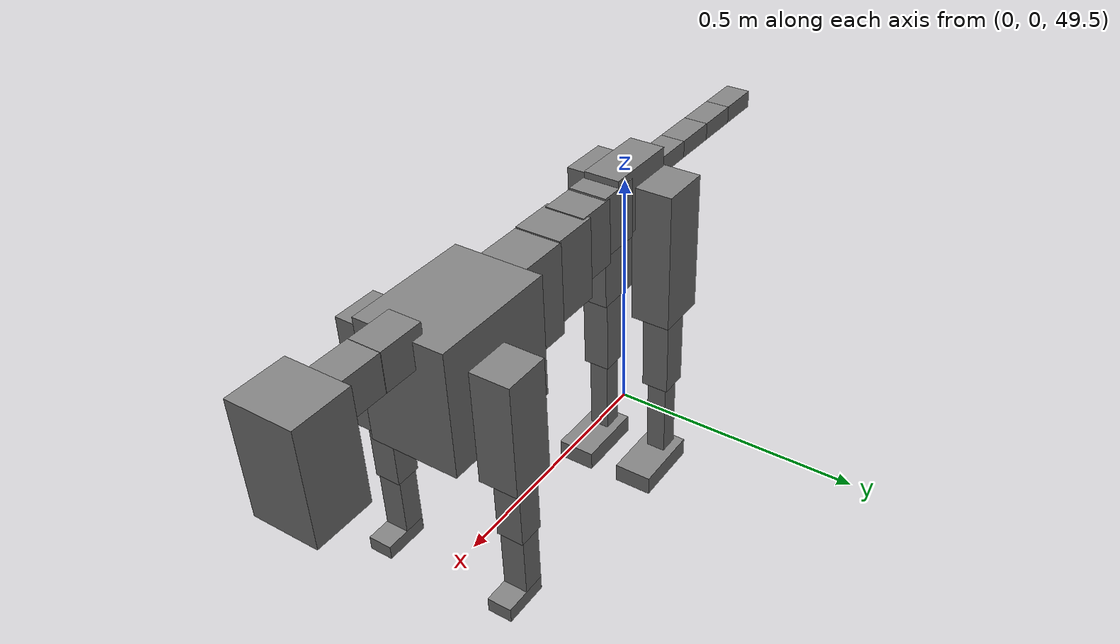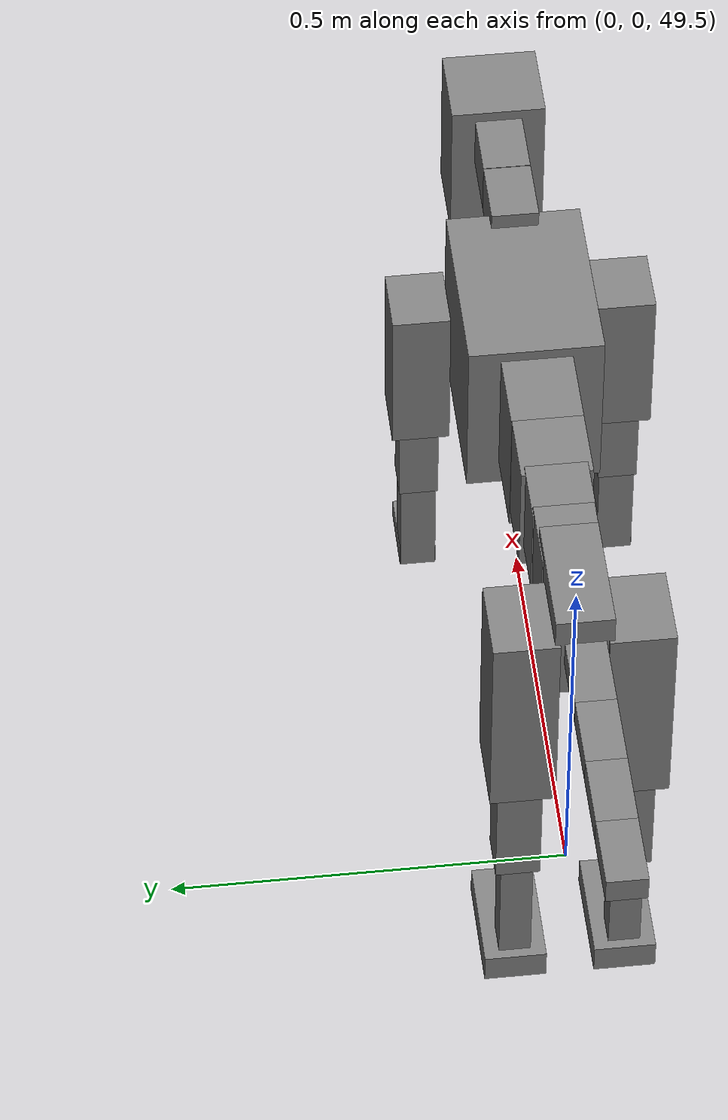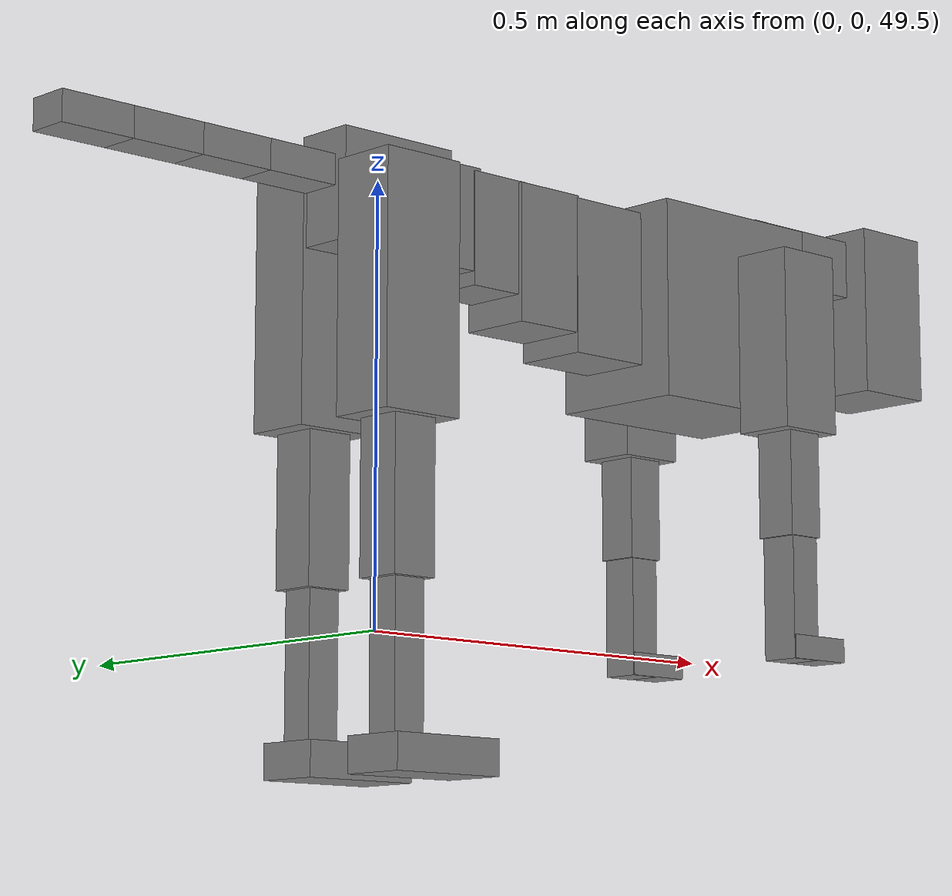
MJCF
<mujoco model="dog">

    <default>
        <joint armature="0.02" stiffness="1" damping="0.2" limited="true"/>
        <geom condim="3" friction="1 0.05 0.05" margin="0.01"/>
        <motor ctrllimited="true" ctrlrange="-1.0 1.0" forcelimited="true" gear="50"/>
    </default>

    <compiler inertiafromgeom="true" angle="radian"/>

    <option timestep="0.016" iterations="50" tolerance="1e-10" solver="Newton" jacobian="dense" cone="pyramidal"/>

    <size nconmax="20000" njmax="60000" nstack="5000000"/>
    <visual>
        <map force="0.1" zfar="30"/>
        <rgba haze="0.15 0.25 0.35 1"/>
        <quality shadowsize="2048"/>
        <global offwidth="800" offheight="800"/>
    </visual>

    <asset>
        <texture type="skybox" builtin="gradient" rgb1="0.3 0.5 0.7" rgb2="0 0 0" width="512" height="512"/>
        <texture name="texplane" type="2d" builtin="checker" rgb1=".2 .3 .4" rgb2=".1 0.15 0.2" width="512" height="512"
                 mark="cross" markrgb=".8 .8 .8"/>
        <texture name="texgeom" type="cube" builtin="flat" mark="cross" width="127" height="1278" rgb1="0.8 0.6 0.4"
                 rgb2="0.8 0.6 0.4" markrgb="1 1 1" random="0.01"/>

        <material name="matplane" reflectance="0.3" texture="texplane" texrepeat="1 1" texuniform="true"/>
        <material name="matgeom" texture="texgeom" texuniform="true" rgba="0.8 0.6 .4 1"/>
    </asset>

    <worldbody>
        <geom name="floor" pos="0 0 0" size="0 0 .25" type="plane" material="matplane" condim="3"/>

        <light directional="false" diffuse=".2 .2 .2" specular="0 0 0" pos="0 0 5" dir="0 0 -1" castshadow="false"/>
        <light mode="targetbodycom" target="torso" directional="false" diffuse=".8 .8 .8" specular="0.3 0.3 0.3"
               pos="0 0 4.0" dir="0 0 -1"/>

        <body name="root" pos="0 0 50">
            <freejoint name="root_1"/>
            <geom type="box" pos="0 0 -0.02" size="0.0774  0.0358  0.063" density="2030"/>

            <body name="spine1" pos="0.054 0 0">
                <joint name="spine1_y" axis="0 1 0" range="0 0.7" limited="true"/>
                <geom type="box" pos="0.02375 0 -0.03" size="0.04375  0.0375  0.05985" density="2030"/>

                <body name="spine2" pos="0.0612 0 0">
                    <joint name="spine2_y" axis="0 1 0" range="-0.15 0.15" limited="true"/>
                    <geom type="box" pos="0.03555  0  -0.04" size="0.04055  0.039  0.06615" density="2030"/>

                    <body name="spine3" pos="0.0730 0 0">
                        <joint name="spine3_y" axis="0 1 0" range="-0.15 0.15" limited="true"/>
                        <geom type="box" pos="0.03555  0  -0.057" size="0.04555  0.0445  0.081" density="2030"/>

                        <body name="spine4" pos="0.0780 0 0">
                            <joint name="spine4_y" axis="0 1 0" range="-0.15 0.15" limited="true"/>
                            <geom type="box" pos="0.05265  0  -0.07" size="0.05265  0.045  0.09135" density="2030"/>

                            <body name="torso" pos="0.1082 0 0">
                                <joint name="torso_y" axis="0 1 0" range="-0.15 0.15" limited="true"/>
                                <geom type="box" pos="0.11925  0  -0.085" size="0.11925  0.085  0.11745"
                                      density="2030"/>

                                <body name="neck1" pos="0.2160  0   0.0180">
                                    <joint name="neck1_y" axis="0 1 0" range="-1.2  -1" limited="true"/>
                                    <geom type="box" pos="0.0423  0  0" size="0.0423  0.03  0.036" density="2325"/>

                                    <body name="neck2" pos="0.0853  0  0">
                                        <joint name="neck2_y" axis="0 1 0" range="0.1  0" limited="true"/>
                                        <geom type="box" pos="0.0423  0  0" size="0.0423  0.03  0.036" density="2325"/>

                                        <body name="head" pos="0.0853  0  0">
                                            <joint name="head_y" axis="0 1 0" range="-0.3  -0.2" limited="true"/>
                                            <geom type="box" pos="0.0531  0  -0.055" size="0.0531  0.06  0.1044"
                                                  density="4030"/>

                                        </body>
                                    </body>
                                </body>

                                <body name="front_shoulder" pos="0.156  0   -0.0480">
                                    <joint name="front_shoulder_y" axis="0 1 0" range="-1 1.5" limited="true"/>
                                    <geom type="box" pos="0 0.13 -0.0806" size="0.0429  0.0367  0.1072" density="1158"/>
                                    <geom type="box" pos="0 -0.13 -0.0806" size="0.0429  0.0367  0.1072"
                                          density="1158"/>

                                    <body name="front_elbow" pos="0  0  -0.1612">
                                        <joint name="front_elbow_y" axis="0 1 0" range="-2 0" limited="true"/>
                                        <geom type="box" pos="0 0.13 -0.0753" size="0.0245  0.0251  0.0753"
                                              density="1081"/>
                                        <geom type="box" pos="0 -0.13 -0.0753" size="0.0245  0.0251  0.0753"
                                              density="1081"/>

                                        <body name="front_wrist" pos="0  0  -0.1505">
                                            <joint name="front_wrist_y" axis="0 1 0" range="-0.2 0" limited="true"/>
                                            <geom type="box" pos="0 0.13 -0.0654" size="0.0205  0.0228  0.0785"
                                                  density="1664"/>
                                            <geom type="box" pos="0 -0.13 -0.0654" size="0.0205  0.0228  0.0785"
                                                  density="1664"/>

                                            <body name="front_finger_end" pos="0  0  -0.1308">
                                                <joint name="front_finger_y" axis="0 1 0" range="-0.4 1"
                                                       limited="true"/>
                                                <geom type="box" pos="0.0233  0.13  0.0011"
                                                      size="0.0427  0.0233  0.0139" density="1515"/>
                                                <geom type="box" pos="0.0233  -0.13  0.0011"
                                                      size="0.0427  0.0233  0.0139" density="1515"/>

                                            </body>

                                        </body>
                                    </body>
                                </body>

                            </body>
                        </body>
                    </body>
                </body>
            </body>

            <body name="back_hip" pos="-0.03 0 -0.018">
                <joint name="back_hip_y" axis="0 1 0" range="-1.5 0.3" limited="true"/>
                <geom type="box" pos="0 0.07 -0.1194" size="0.0518  0.0406  0.1422" density="1154"/>
                <geom type="box" pos="0 -0.07 -0.1194" size="0.0518  0.0406  0.1422" density="1154"/>

                <body name="back_knee" pos="0  0  -0.2389">
                    <joint name="back_knee_y" axis="0 1 0" range="0 2.8" limited="true"/>
                    <geom type="box" pos="0 0.07 -0.0901" size="0.0284  0.0280  0.1056" density="1227"/>
                    <geom type="box" pos="0 -0.07 -0.0901" size="0.0284  0.0280  0.1056" density="1227"/>

                    <body name="back_ankle" pos="0  0  -0.1801">
                        <joint name="back_ankle_y" axis="0 1 0" range="-2.2 0" limited="true"/>
                        <geom type="box" pos="0 0.07 -0.0983" size="0.0203  0.0203  0.1095" density="1284"/>
                        <geom type="box" pos="0 -0.07 -0.0983" size="0.0203  0.0203  0.1095" density="1284"/>

                        <body name="back_toe_end" pos="0  0  -0.1965">
                            <joint name="back_toe_y" axis="0 1 0" range="-0.4 1" limited="true"/>
                            <geom type="box" pos="0.0393  0.07  -0.0052" size="0.0721  0.0393  0.0202" density="1515"/>
                            <geom type="box" pos="0.0393  -0.07  -0.0052" size="0.0721  0.0393  0.0202" density="1515"/>

                        </body>
                    </body>
                </body>
            </body>

            <body name="tail1" pos="-0.074 0 -0.006">
                <joint name="tail1_y" axis="0 1 0" range="-0.2 0.2" limited="true"/>
                <geom type="box" pos="-0.0536  0  0" size="0.045  0.025  0.0175" density="1587"/>

                <body name="tail2" pos="-0.09 0 0">
                    <joint name="tail2_y" axis="0 1 0" range="-0.2 0.2" limited="true"/>
                    <geom type="box" pos="-0.0536  0  0" size="0.045  0.025  0.0175" density="1587"/>

                    <body name="tail3" pos="-0.09 0 0">
                        <joint name="tail3_y" axis="0 1 0" range="-0.2 0.2" limited="true"/>
                        <geom type="box" pos="-0.0536  0  0" size="0.045  0.025  0.0175" density="1587"/>

                        <body name="tail4" pos="-0.09 0 0">
                            <joint name="tail4_y" axis="0 1 0" range="-0.2 0.2" limited="true"/>
                            <geom type="box" pos="-0.0536  0  0" size="0.045  0.025  0.0175" density="1587"/>

                        </body>
                    </body>
                </body>
            </body>
        </body>
    </worldbody>

    <actuator>
        <motor joint="spine1_y" forcerange="-150 150     "/>
        <motor joint="spine2_y" forcerange="-150 150     "/>
        <motor joint="spine3_y" forcerange="-150 150     "/>
        <motor joint="spine4_y" forcerange="-150 150     "/>
        <motor joint="torso_y" forcerange="-150 150     "/>
        <motor joint="neck1_y" forcerange="-100 100       "/>
        <motor joint="neck2_y" forcerange="-100 100       "/>
        <motor joint="head_y" forcerange="-150 150       "/>
        <motor joint="front_shoulder_y" forcerange="-197.76 146.87"/>
        <motor joint="front_elbow_y" forcerange="-144.73 137.52"/>
        <motor joint="front_wrist_y" forcerange="-103.04 79.24"/>
        <motor joint="front_finger_y" forcerange="-51.49 32.67"/>
        <motor joint="back_hip_y" forcerange="-379.27 361.99"/>
        <motor joint="back_knee_y" forcerange="-209.56 397.67"/>
        <motor joint="back_angle_y" forcerange="-93.08 131.32"/>
        <motor joint="back_toe_y" forcerange="-99.32 135.11"/>
        <motor joint="tail1_y" forcerange="-50 50     "/>
        <motor joint="tail2_y" forcerange="-50 50     "/>
        <motor joint="tail3_y" forcerange="-50 50     "/>
        <motor joint="tail4_y" forcerange="-50 50     "/>
    </actuator>
</mujoco>
